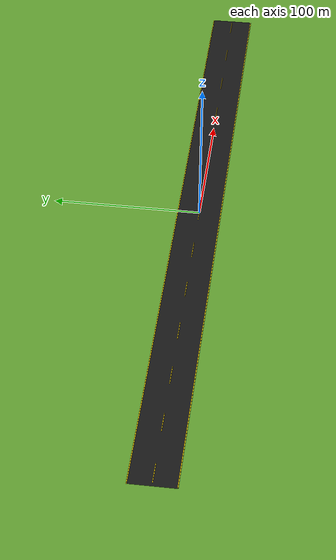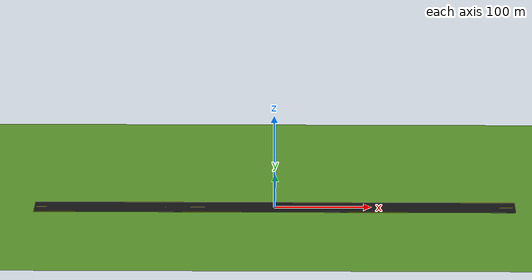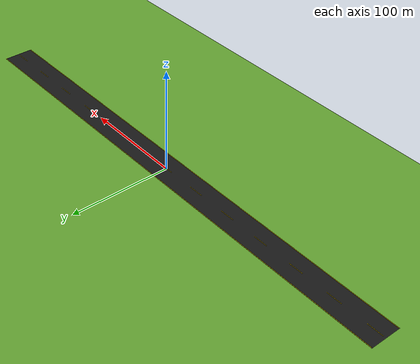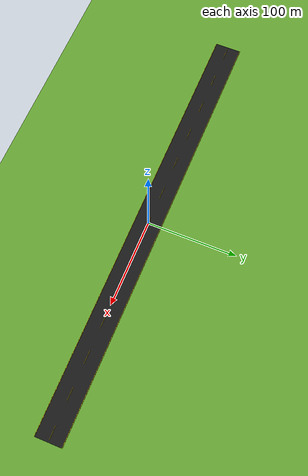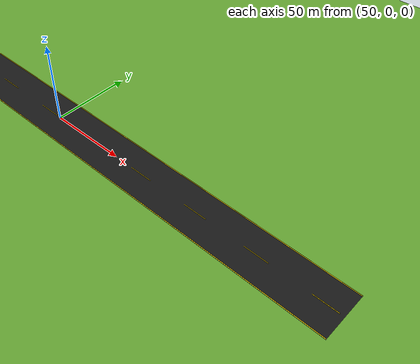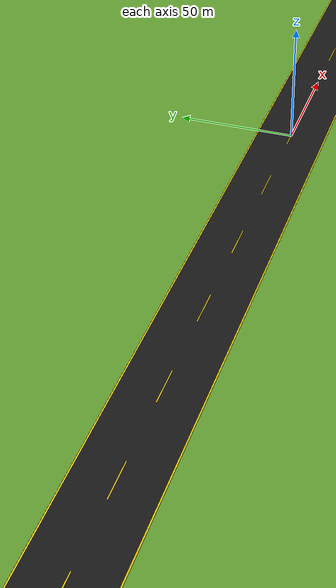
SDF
<sdf version="1.9">
 <world name="default">
  <physics type="ode">
   <max_step_size>0.004</max_step_size>
   <real_time_factor>1.0</real_time_factor>
   <real_time_update_rate>250</real_time_update_rate>
  </physics>
  <gravity>0 0 -9.8</gravity>
  <magnetic_field>6e-06 2.3e-05 -4.2e-05</magnetic_field>
  <atmosphere type="adiabatic"/>
  <scene><ambient>0.8 0.8 0.8 1</ambient><background>0.8 0.8 0.8 1</background><shadows>false</shadows></scene>
  <plugin filename="gz-sim-physics-system" name="gz::sim::systems::Physics"/>
  <plugin filename="gz-sim-sensors-system" name="gz::sim::systems::Sensors">
   <render_engine>ogre2</render_engine>
  </plugin>
  <plugin filename="gz-sim-scene-broadcaster-system" name="gz::sim::systems::SceneBroadcaster"/>
  <plugin filename="gz-sim-contact-system" name="gz::sim::systems::Contact"/>
  <plugin filename="gz-sim-imu-system" name="gz::sim::systems::Imu"/>
  <plugin filename="gz-sim-air-pressure-system" name="gz::sim::systems::AirPressure"/>
  <plugin filename="gz-sim-magnetometer-system" name="gz::sim::systems::Magnetometer"/>
  <plugin filename="gz-sim-navsat-system" name="gz::sim::systems::NavSat"/>
  <plugin filename="gz-sim-user-commands-system" name="gz::sim::systems::UserCommands"/>
  <model name="ground_plane">
   <static>true</static>
   <link name="link">
    <collision name="collision">
     <geometry><plane><normal>0 0 1</normal><size>1 1</size></plane></geometry>
    </collision>
    <visual name="visual">
     <geometry><plane><normal>0 0 1</normal><size>1000 1000</size></plane></geometry>
     <material>
      <ambient>0.4 0.65 0.2 1</ambient>
      <diffuse>0.4 0.65 0.2 1</diffuse>
      <specular>0.1 0.1 0.1 1</specular>
     </material>
    </visual>
   </link>
  </model>
  <model name="pist">
   <static>true</static>
   <pose>0 0 0.02 0 0 0</pose>
   <link name="pist_link">
    <visual name="pist_visual">
     <geometry><box><size>500 30 0.05</size></box></geometry>
     <material>
      <ambient>0.08 0.08 0.08 1</ambient>
      <diffuse>0.1 0.1 0.1 1</diffuse>
      <specular>0.2 0.2 0.2 1</specular>
     </material>
    </visual>
    <collision name="col"><geometry><box><size>500 30 0.05</size></box></geometry></collision>
   </link>
  </model>
  <model name="edge_north">
   <static>true</static>
   <pose>0 14.7 0.06 0 0 0</pose>
   <link name="l">
    <visual name="v">
     <geometry><box><size>500 0.5 0.01</size></box></geometry>
     <material>
      <ambient>1 0.85 0 1</ambient>
      <diffuse>1 0.85 0 1</diffuse>
      <specular>0.3 0.3 0 1</specular>
     </material>
    </visual>
   </link>
  </model>
  <model name="edge_south">
   <static>true</static>
   <pose>0 -14.7 0.06 0 0 0</pose>
   <link name="l">
    <visual name="v">
     <geometry><box><size>500 0.5 0.01</size></box></geometry>
     <material>
      <ambient>1 0.85 0 1</ambient>
      <diffuse>1 0.85 0 1</diffuse>
      <specular>0.3 0.3 0 1</specular>
     </material>
    </visual>
   </link>
  </model>
  <model name="yc_1">
   <static>true</static>
   <pose>-240 0 0.06 0 0 0</pose>
   <link name="l">
    <visual name="v">
     <geometry><box><size>15 0.4 0.01</size></box></geometry>
     <material>
      <ambient>1 0.85 0 1</ambient>
      <diffuse>1 0.85 0 1</diffuse>
      <specular>0.3 0.3 0 1</specular>
     </material>
    </visual>
   </link>
  </model>
  <model name="yc_2">
   <static>true</static>
   <pose>-200 0 0.06 0 0 0</pose>
   <link name="l">
    <visual name="v">
     <geometry><box><size>15 0.4 0.01</size></box></geometry>
     <material>
      <ambient>1 0.85 0 1</ambient>
      <diffuse>1 0.85 0 1</diffuse>
      <specular>0.3 0.3 0 1</specular>
     </material>
    </visual>
   </link>
  </model>
  <model name="yc_3">
   <static>true</static>
   <pose>-160 0 0.06 0 0 0</pose>
   <link name="l">
    <visual name="v">
     <geometry><box><size>15 0.4 0.01</size></box></geometry>
     <material>
      <ambient>1 0.85 0 1</ambient>
      <diffuse>1 0.85 0 1</diffuse>
      <specular>0.3 0.3 0 1</specular>
     </material>
    </visual>
   </link>
  </model>
  <model name="yc_4">
   <static>true</static>
   <pose>-120 0 0.06 0 0 0</pose>
   <link name="l">
    <visual name="v">
     <geometry><box><size>15 0.4 0.01</size></box></geometry>
     <material>
      <ambient>1 0.85 0 1</ambient>
      <diffuse>1 0.85 0 1</diffuse>
      <specular>0.3 0.3 0 1</specular>
     </material>
    </visual>
   </link>
  </model>
  <model name="yc_5">
   <static>true</static>
   <pose>-80 0 0.06 0 0 0</pose>
   <link name="l">
    <visual name="v">
     <geometry><box><size>15 0.4 0.01</size></box></geometry>
     <material>
      <ambient>1 0.85 0 1</ambient>
      <diffuse>1 0.85 0 1</diffuse>
      <specular>0.3 0.3 0 1</specular>
     </material>
    </visual>
   </link>
  </model>
  <model name="yc_6">
   <static>true</static>
   <pose>-40 0 0.06 0 0 0</pose>
   <link name="l">
    <visual name="v">
     <geometry><box><size>15 0.4 0.01</size></box></geometry>
     <material>
      <ambient>1 0.85 0 1</ambient>
      <diffuse>1 0.85 0 1</diffuse>
      <specular>0.3 0.3 0 1</specular>
     </material>
    </visual>
   </link>
  </model>
  <model name="yc_7">
   <static>true</static>
   <pose>0 0 0.06 0 0 0</pose>
   <link name="l">
    <visual name="v">
     <geometry><box><size>15 0.4 0.01</size></box></geometry>
     <material>
      <ambient>1 0.85 0 1</ambient>
      <diffuse>1 0.85 0 1</diffuse>
      <specular>0.3 0.3 0 1</specular>
     </material>
    </visual>
   </link>
  </model>
  <model name="yc_8">
   <static>true</static>
   <pose>40 0 0.06 0 0 0</pose>
   <link name="l">
    <visual name="v">
     <geometry><box><size>15 0.4 0.01</size></box></geometry>
     <material>
      <ambient>1 0.85 0 1</ambient>
      <diffuse>1 0.85 0 1</diffuse>
      <specular>0.3 0.3 0 1</specular>
     </material>
    </visual>
   </link>
  </model>
  <model name="yc_9">
   <static>true</static>
   <pose>80 0 0.06 0 0 0</pose>
   <link name="l">
    <visual name="v">
     <geometry><box><size>15 0.4 0.01</size></box></geometry>
     <material>
      <ambient>1 0.85 0 1</ambient>
      <diffuse>1 0.85 0 1</diffuse>
      <specular>0.3 0.3 0 1</specular>
     </material>
    </visual>
   </link>
  </model>
  <model name="yc_10">
   <static>true</static>
   <pose>120 0 0.06 0 0 0</pose>
   <link name="l">
    <visual name="v">
     <geometry><box><size>15 0.4 0.01</size></box></geometry>
     <material>
      <ambient>1 0.85 0 1</ambient>
      <diffuse>1 0.85 0 1</diffuse>
      <specular>0.3 0.3 0 1</specular>
     </material>
    </visual>
   </link>
  </model>
  <model name="yc_11">
   <static>true</static>
   <pose>160 0 0.06 0 0 0</pose>
   <link name="l">
    <visual name="v">
     <geometry><box><size>15 0.4 0.01</size></box></geometry>
     <material>
      <ambient>1 0.85 0 1</ambient>
      <diffuse>1 0.85 0 1</diffuse>
      <specular>0.3 0.3 0 1</specular>
     </material>
    </visual>
   </link>
  </model>
  <model name="yc_12">
   <static>true</static>
   <pose>200 0 0.06 0 0 0</pose>
   <link name="l">
    <visual name="v">
     <geometry><box><size>15 0.4 0.01</size></box></geometry>
     <material>
      <ambient>1 0.85 0 1</ambient>
      <diffuse>1 0.85 0 1</diffuse>
      <specular>0.3 0.3 0 1</specular>
     </material>
    </visual>
   </link>
  </model>
  <model name="yc_13">
   <static>true</static>
   <pose>240 0 0.06 0 0 0</pose>
   <link name="l">
    <visual name="v">
     <geometry><box><size>15 0.4 0.01</size></box></geometry>
     <material>
      <ambient>1 0.85 0 1</ambient>
      <diffuse>1 0.85 0 1</diffuse>
      <specular>0.3 0.3 0 1</specular>
     </material>
    </visual>
   </link>
  </model>
  <light name="sunUTC" type="directional">
   <pose>0 0 500 0 0 0</pose>
   <intensity>1</intensity>
   <direction>0.001 0.625 -0.78</direction>
   <diffuse>0.904 0.904 0.904 1</diffuse>
   <specular>0.271 0.271 0.271 1</specular>
   <attenuation><range>2000</range><linear>0</linear><constant>1</constant><quadratic>0</quadratic></attenuation>
  </light>
  <spherical_coordinates>
   <surface_model>EARTH_WGS84</surface_model>
   <world_frame_orientation>ENU</world_frame_orientation>
   <latitude_deg>47.397971</latitude_deg>
   <longitude_deg>8.546163</longitude_deg>
   <elevation>0</elevation>
  </spherical_coordinates>
 </world>
</sdf>
